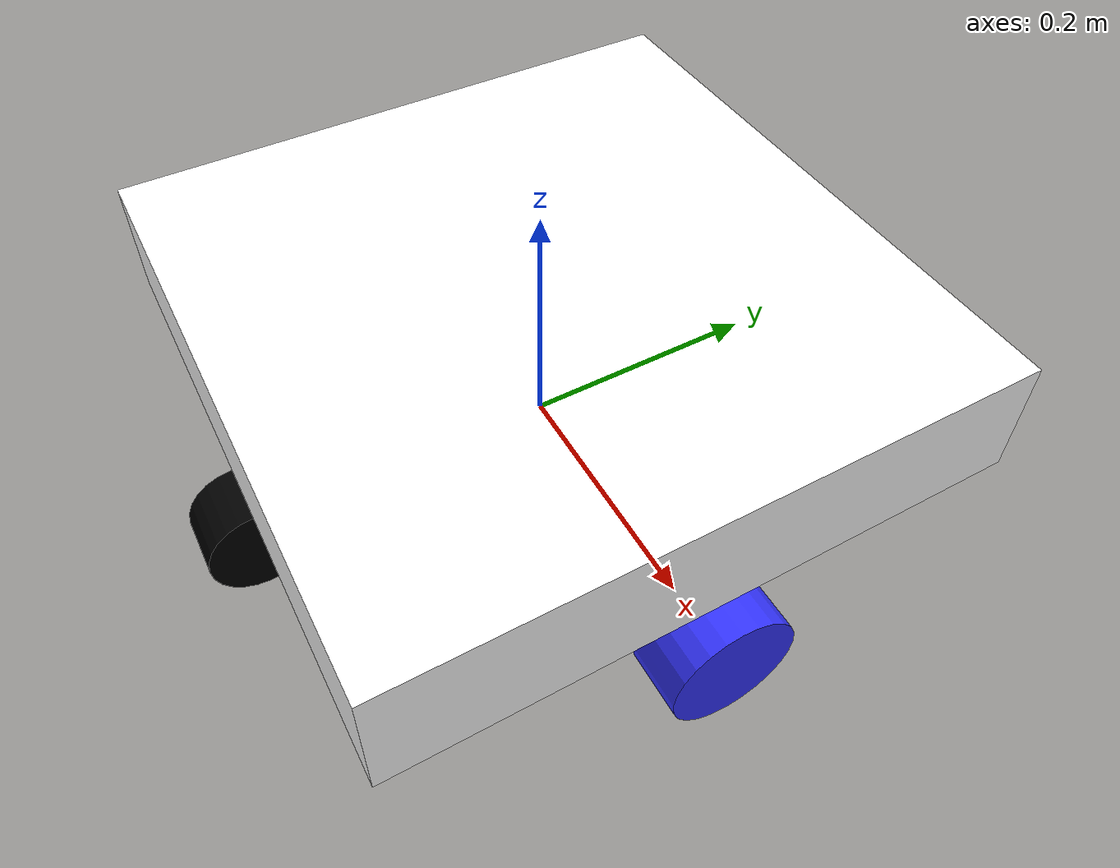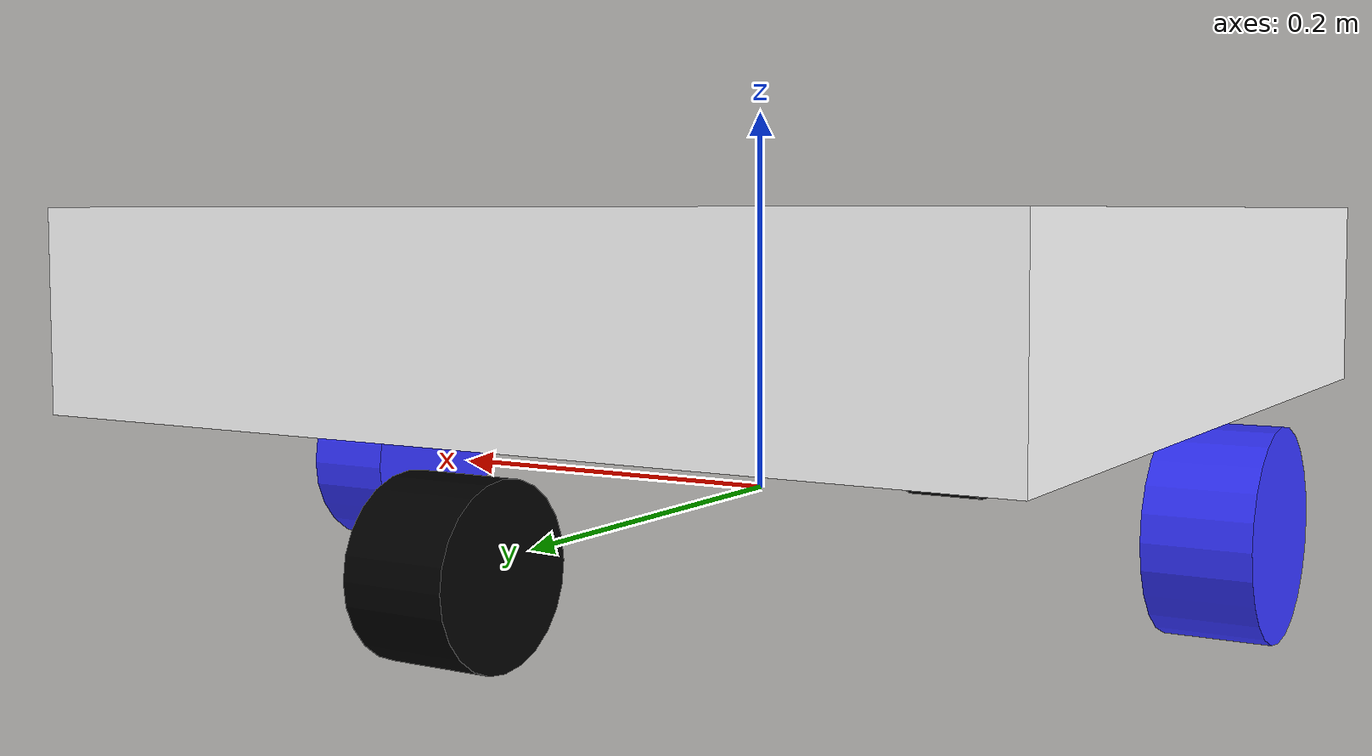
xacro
<?xml version="1.0" ?>
<robot xmlns:xacro="http://www.ros.org/wiki/xacro" name="robot">

    <!-- This will include all the contents of example_include.xacro first. Go check it out! -->
    <xacro:include filename="common.urdf.xacro" />

     <!-- This first link called "world" is empty -->
    <link name="world"></link>

    <!-- A simple fixed joint from our empty world link, to our base. -->
    <!-- The base origin is offset from the world origin. -->
    <joint name="base_joint" type="fixed">
        <origin xyz="0 0 0" rpy="0 0 0"/>
        <parent link="world"/>
        <child link="base_link"/>
    </joint>

    <link name="base_link">
        <visual>
            <geometry>
                <box size="0.5 0.5 0.1" />
            </geometry>
            <origin xyz = "0 0 0.1" rpy="0 0 0" />
            <material name="white" />
        </visual>
    </link>

    <!-- left wheel joint-->
    <joint name="left_wheel_joint" type="revolute">
        <origin xyz="-0.25 0 0" rpy="0 ${pi/2} 0" />
        <parent link="base_link" />
        <child link="left_wheel" />
        <axis rpy="0 0 0" xyz="0 0 1" />
        <limit lower="-1.79769e+308" upper="1.79769e+308" effort="100000" velocity="1000" />
    </joint>

    <!-- right wheel joint-->
    <joint name="right_wheel_joint" type="revolute">
        <origin xyz="0.25 0 0" rpy="0 ${pi/2} 0" />
        <parent link="base_link" />
        <child link="right_wheel" />
        <axis rpy="0 0 0" xyz="0 0 1" />
        <limit lower="-1.79769e+308" upper="1.79769e+308" effort="100000" velocity="1000" />
    </joint>

    <!-- front wheel joint-->
    <joint name="front_wheel_joint" type="fixed">
        <origin xyz="0 0.25 0" rpy="0 ${pi/2} 0" />
        <parent link="base_link" />
        <child link="front_wheel" />
    </joint>

    <!-- back wheel joint-->
    <joint name="back_wheel_joint" type="fixed">
        <origin xyz="0 -0.25 0" rpy="0 ${pi/2} 0" />
        <parent link="base_link" />
        <child link="back_wheel" />
    </joint>

    <!-- left wheel link -->
    <link name="left_wheel">
        <visual>
            <geometry>
                <cylinder length="0.05" radius="0.05" />
            </geometry>
            <material name="blue" />
        </visual>
    </link>

    <!-- right wheel link -->
    <link name="right_wheel">
        <visual>
            <geometry>
                <cylinder length="0.05" radius="0.05" />
            </geometry>
            <material name="blue" />
        </visual>
    </link>

    <!-- front wheel link -->
    <link name="front_wheel">
        <visual>
            <geometry>
                <cylinder length="0.05" radius="0.04" />
            </geometry>
            <material name="black" />
        </visual>
    </link>

    <!-- back wheel link -->
    <link name="back_wheel">
        <visual>
            <geometry>
                <cylinder length="0.05" radius="0.04" />
            </geometry>
            <material name="black" />
        </visual>
    </link>

</robot>

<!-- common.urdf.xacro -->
<robot xmlns:xacro="http://www.ros.org/wiki/xacro" >

    <!-- This file is not a robot in and of itself, it just contains some useful tags that could be included in any robot -->

    <!-- Specify some colours -->

    <material name="white">
        <color rgba="1 1 1 1"/>
    </material>

    <material name="orange">
        <color rgba="1 0.3 0.1 1"/>
    </material>

    <material name="blue">
        <color rgba="0.2 0.2 1 1"/>
    </material>

    <material name="black">
        <color rgba="0 0 0 1"/>
    </material>

    <!-- Specify some intertial cylinders -->
    <xacro:macro name="inertial_cylinder" params="mass length radius *origin">
        <inertial>
            <xacro:insert_block name="origin"/>
            <mass value="${mass}" />
            <inertia ixx="${(1/12) * mass * (3*radius*radius + length*length)}" ixy="0.0" ixz="0.0"
                    iyy="${(1/12) * mass * (3*radius*radius + length*length)}" iyz="0.0"
                    izz="${(1/2) * mass * (radius*radius)}" />
        </inertial>
    </xacro:macro>
</robot>
